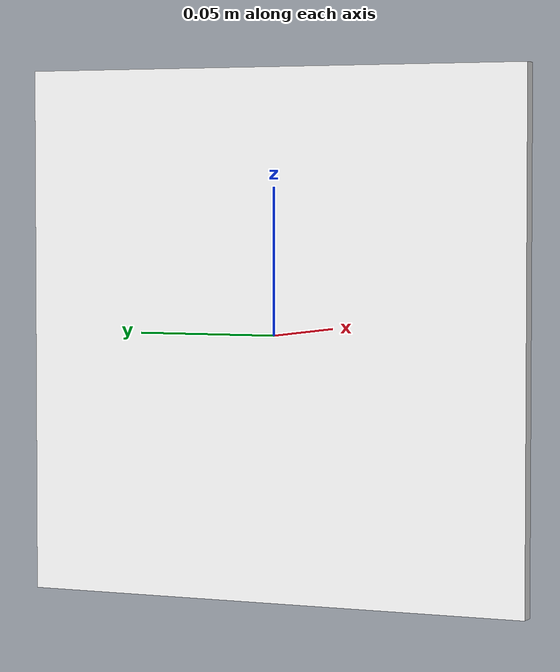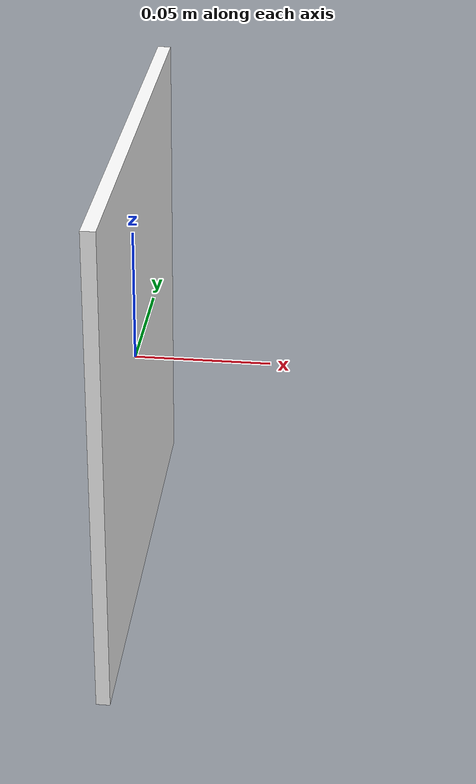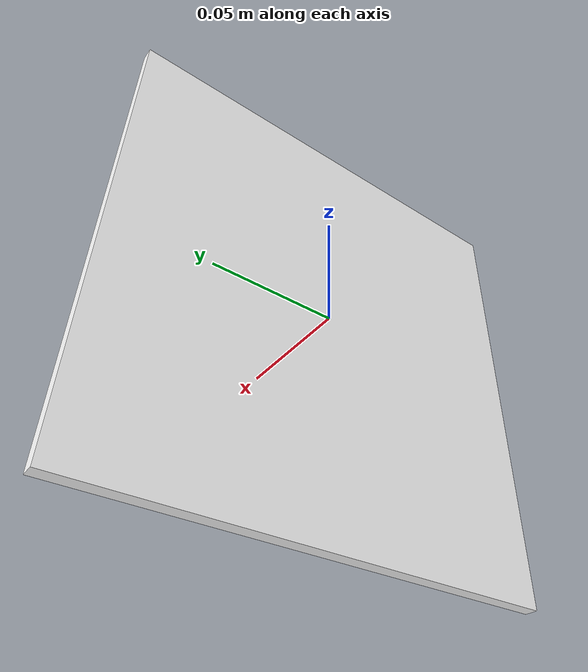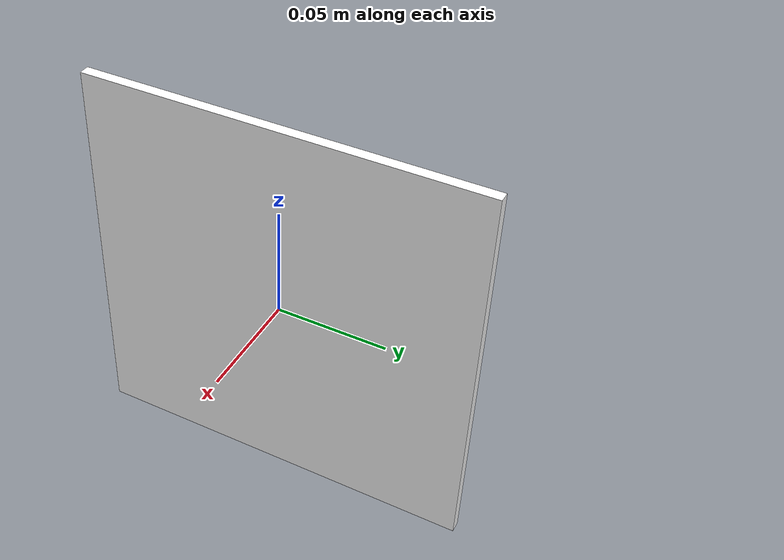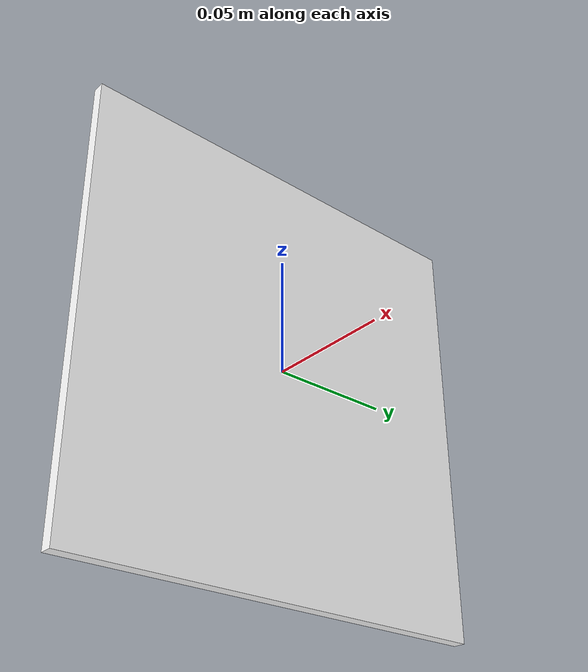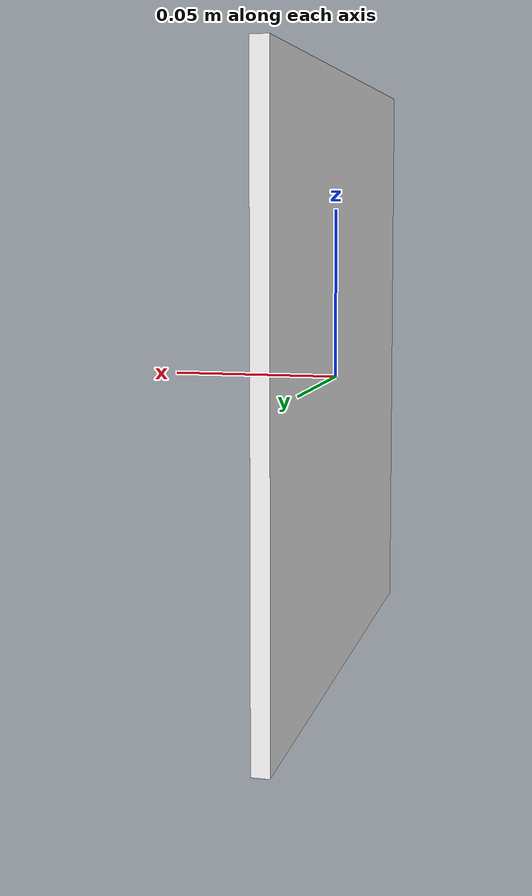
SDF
<?xml version="1.0" ?>
<sdf version="1.7">
  <model name="aruco_marker_42">
    <static>true</static>
    <link name="link">
      <visual name="marker_visual">
        <geometry>
          <box><size>0.005 0.18 0.18</size></box>
        </geometry>
        <material>
          <diffuse>1 1 1 1</diffuse>
          <pbr>
            <metal>
              <albedo_map>materials/textures/aruco_42.png</albedo_map>
            </metal>
          </pbr>
        </material>
      </visual>
      <collision name="marker_collision">
        <geometry>
          <box><size>0.005 0.18 0.18</size></box>
        </geometry>
      </collision>
    </link>
  </model>
</sdf>
